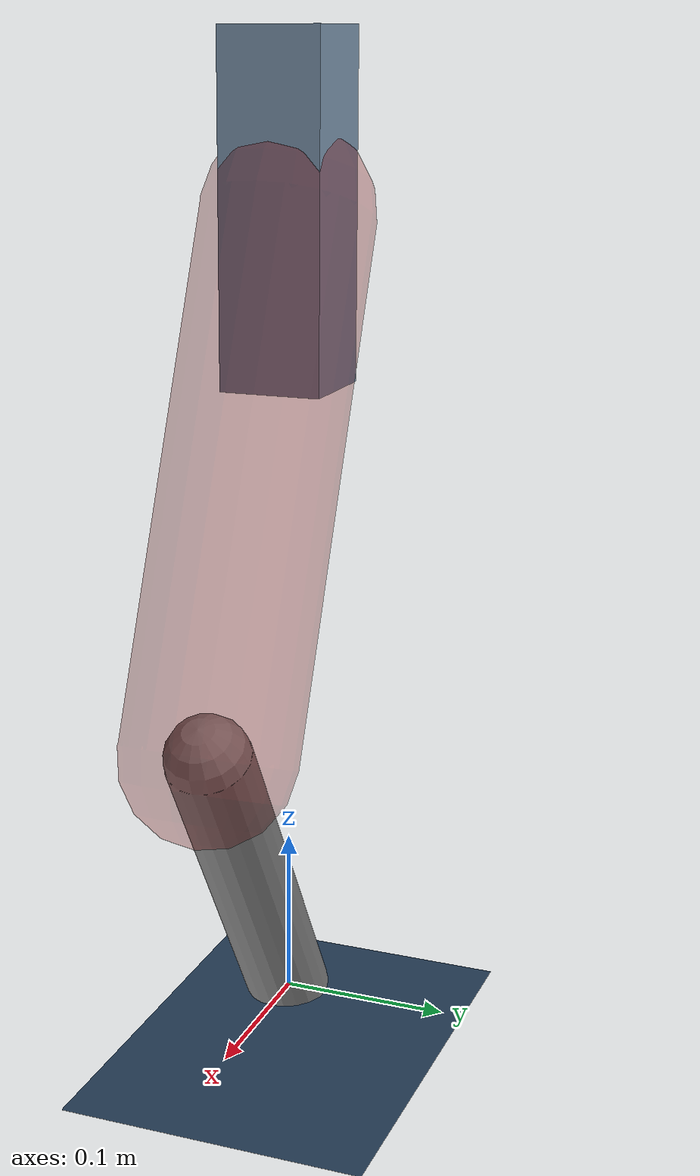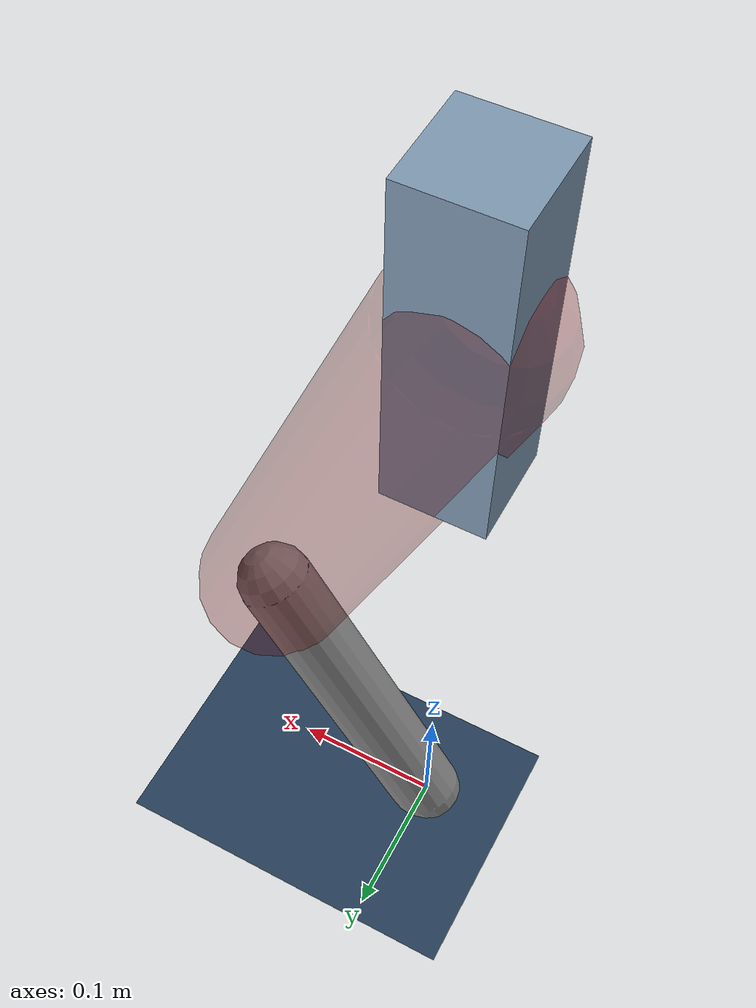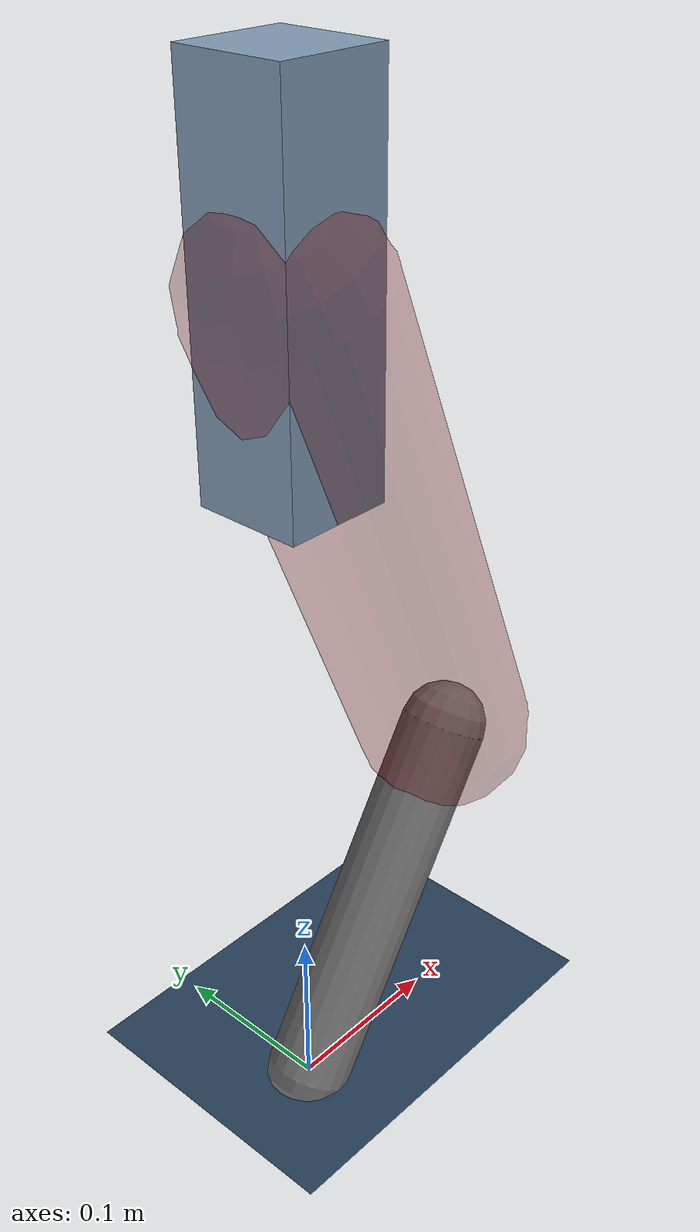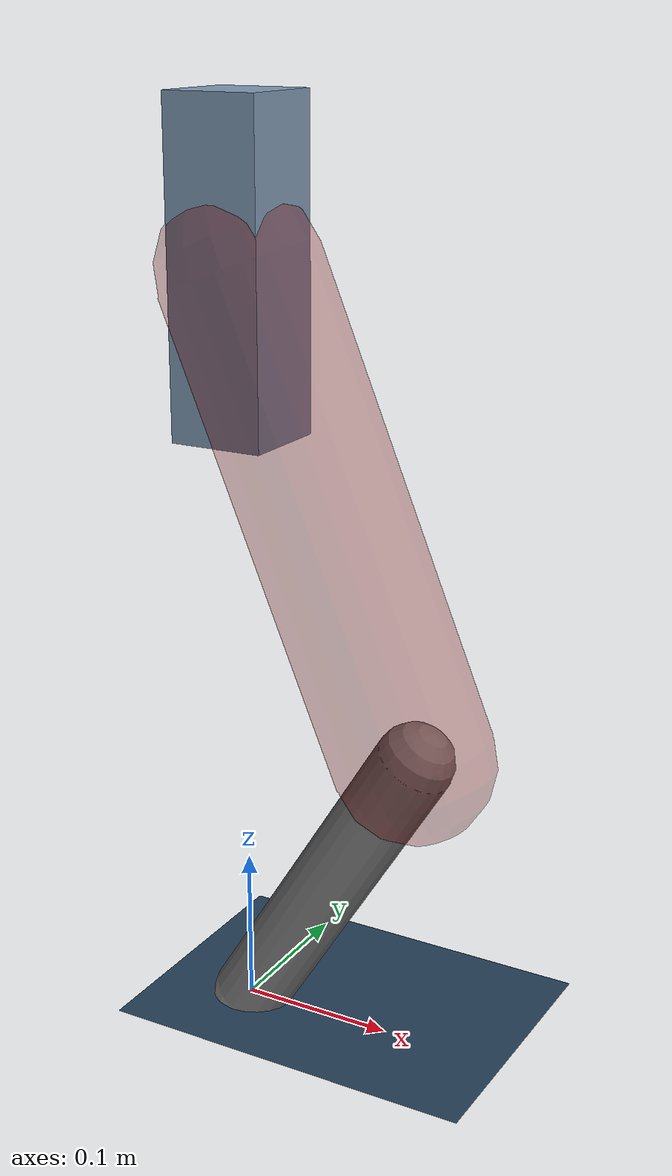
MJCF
<mujoco model="Hopper2D">
	<compiler inertiafromgeom="true" angle="radian" />
	<option timestep="0.001" integrator="implicit" cone="elliptic" solver="Newton" tolerance="1e-10" />

	<default>
		<geom contype="1" conaffinity="1" condim="3" friction="2 0.005 0.0001" solref="0.005 1" />
		<joint limited="true" damping="0.1" />
	</default>

	<asset>
		<texture name="skybox" type="skybox" builtin="gradient" rgb1=".4 .6 .8" rgb2="0 0 0" width="800" height="800" />
		<texture name="grid" type="2d" builtin="checker" rgb1=".1 .2 .3" rgb2=".2 .3 .4" width="300" height="300" mark="edge" markrgb=".2 .3 .4" />
		<material name="ground" texture="grid" texrepeat="1 1" texuniform="true" reflectance="0.1" />
		<material name="leg" rgba="0.5 0.6 0.7 1" />
	</asset>

	<worldbody>

		<geom name="floor" type="plane" size="5 5 0.25" material="ground" />

		<light directional="false" diffuse="0.8 0.8 0.8" specular="0.3 0.3 0.3" pos="0 0 2" dir="0 0 -1" />
		<light mode="targetbodycom" target="base" directional="false" diffuse="0.8 0.8 0.8" specular="0.3 0.3 0.3" pos="0 0 2" dir="0 0 -1" />

		<camera name="fixed" pos="0 -2 1" xyaxes="1 0 0 0 0 1" />
		<camera name="tracking" mode="trackcom" pos="0 -3 1" />

		<body name="root" pos="0 0 0.47906893138615336">
			<joint name="slide_x" type="slide" axis="1 0 0" range="-100 100" />
			<joint name="slide_z" type="slide" axis="0 0 1" range="0 10" />

			<body name="base" pos="0 0 0">
				<geom name="torso" type="box" size="0.03 0.03 0.1" mass="2.6470000000000002" material="leg" />

				<body name="link1" pos="0 0 0" euler="0 1.1759610217582057 0">
					<joint type="hinge" axis="0 -1 0" pos="0 0 0" name="hinge1" limited="true" range="-3.14 3.14" stiffness="0" damping="0.1" />
					<geom name="thigh" type="capsule" fromto="0 0 0 0.30884457171343815 0 0" size="0.05" rgba="0.5 0 0 0.3" mass="1.0127648007976269" />

					<body name="link2" pos="0.30884457171343815 0 0" euler="0 0.944327855968391 0">
						<joint type="hinge" axis="0 -1 0" pos="0 0 0" name="hinge2" limited="true" range="-3.14 3.14" stiffness="0" damping="0.1" />
						<geom name="shank" type="capsule" fromto="0 0 0 0.22747330885591488 0 0" size="0.025" mass="0.4238786470847319" />

					</body>
				</body>
			</body>
		</body>
	</worldbody>

	<actuator>
		<motor name="torque1" joint="hinge1" ctrlrange="-84.42329584489615 84.42329584489615" ctrllimited="true" gear="1" />
		<motor name="torque2" joint="hinge2" ctrlrange="-95.89774655804969 95.89774655804969" ctrllimited="true" gear="1" />
	</actuator>
</mujoco>
